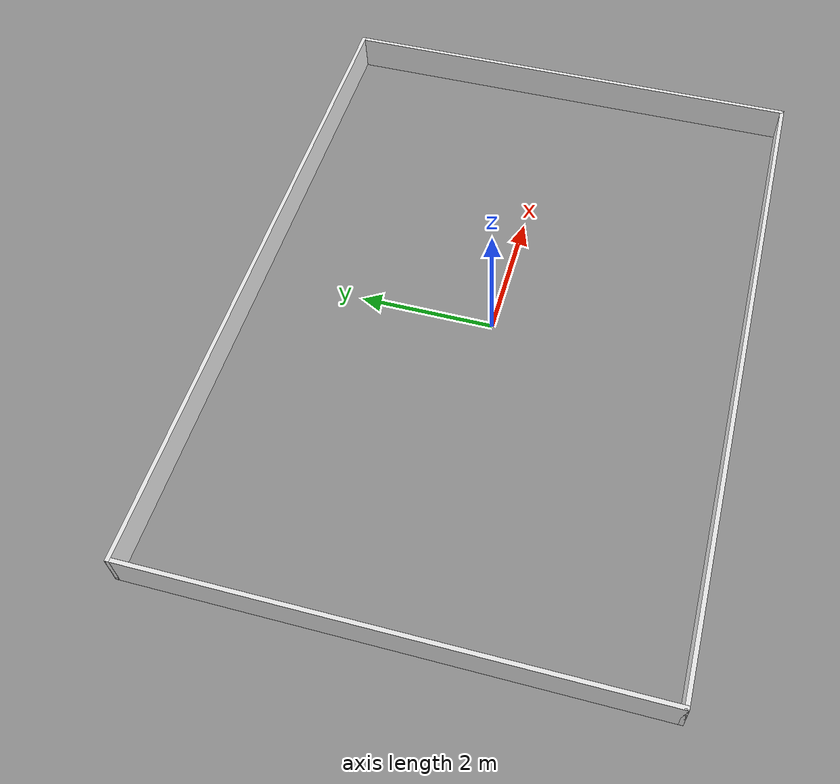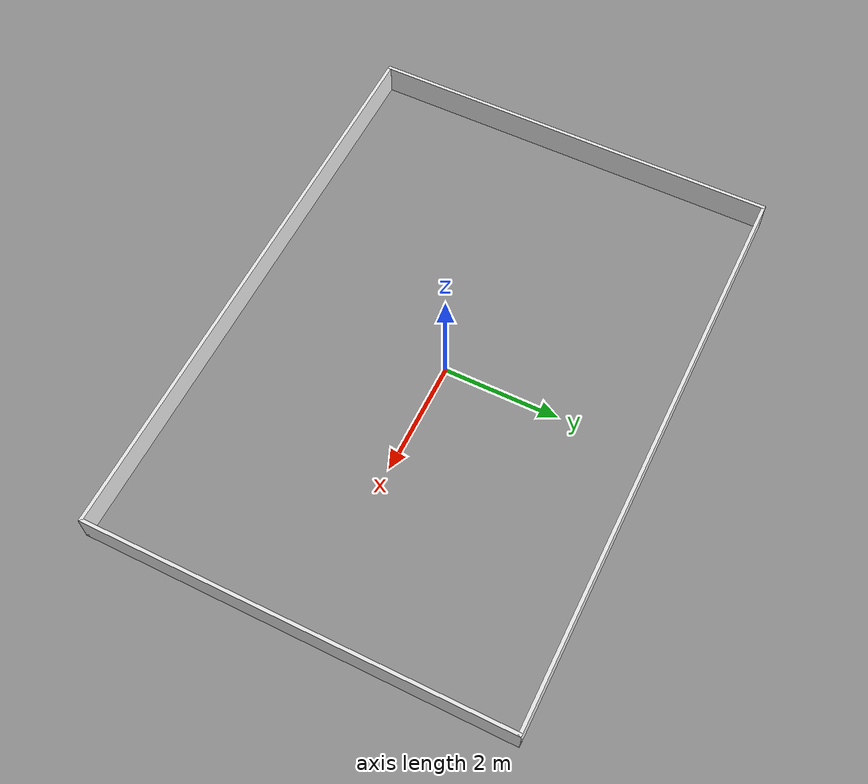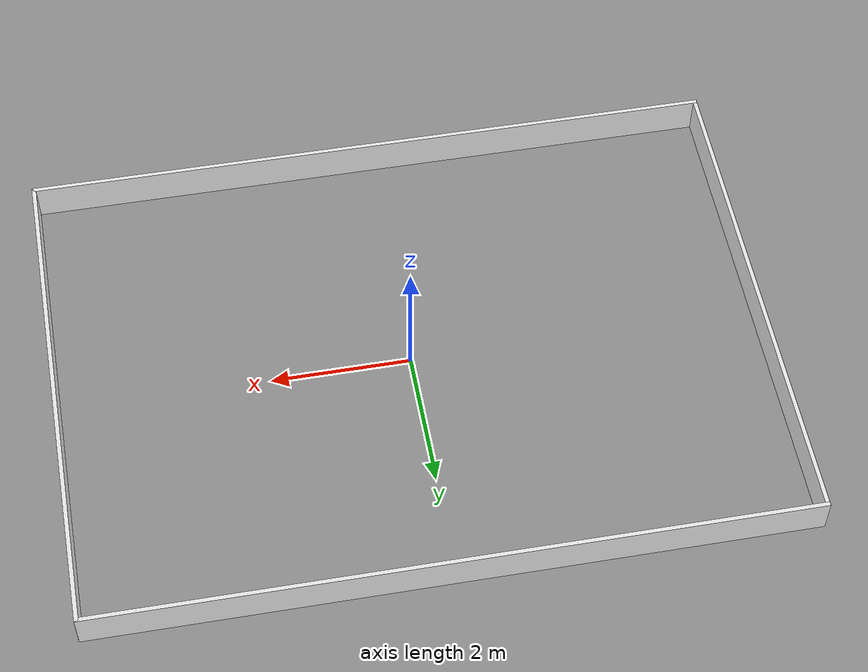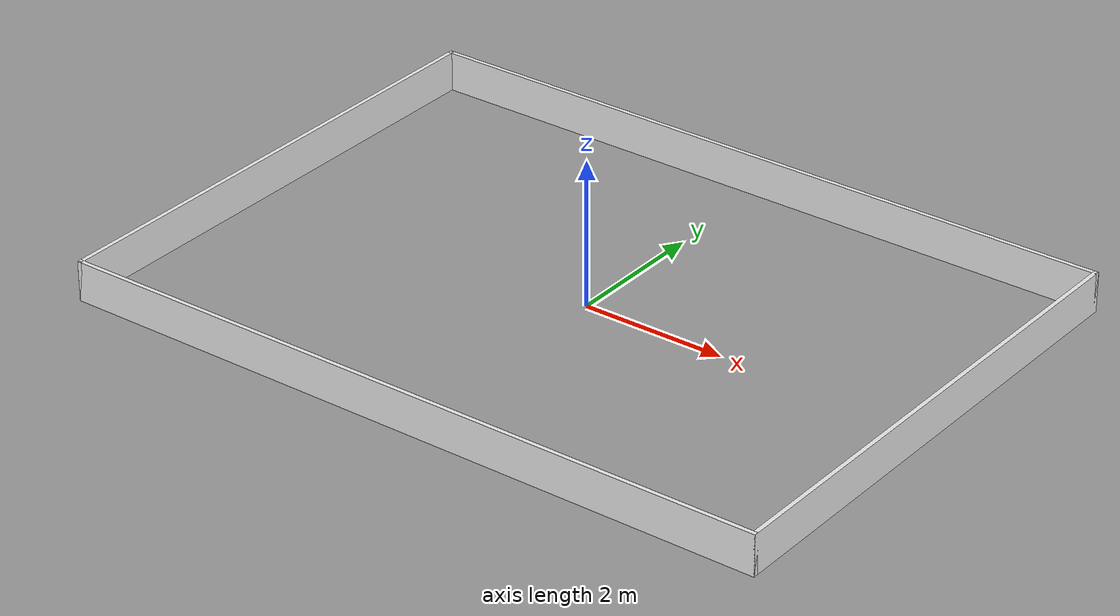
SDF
<sdf version="1.6">
 <world name="sq_community">
  <model name="sq_walls">
   <static>1</static>
   <link name="wall_n">
    <collision name="wall_n_c">
     <pose>0 3.6 0.275 0 0 0</pose>
     <geometry><box><size>10.06 0.06 0.55</size></box></geometry>
    </collision>
    <visual name="wall_n_v">
     <pose>0 3.6 0.275 0 0 0</pose>
     <geometry><box><size>10.06 0.06 0.55</size></box></geometry>
     <material>
      <script><uri>file://media/materials/scripts/gazebo.material</uri><name>Gazebo/White</name></script>
      <ambient>0.3025 0.3025 0.319 1</ambient>
      <diffuse>0.55 0.55 0.58 1</diffuse>
      <specular>0.1 0.1 0.1 1</specular>
      <emissive>0 0 0 1</emissive>
     </material>
    </visual>
   </link>
   <link name="wall_s">
    <collision name="wall_s_c">
     <pose>0 -3.6 0.275 0 0 0</pose>
     <geometry><box><size>10.06 0.06 0.55</size></box></geometry>
    </collision>
    <visual name="wall_s_v">
     <pose>0 -3.6 0.275 0 0 0</pose>
     <geometry><box><size>10.06 0.06 0.55</size></box></geometry>
     <material>
      <script><uri>file://media/materials/scripts/gazebo.material</uri><name>Gazebo/White</name></script>
      <ambient>0.3025 0.3025 0.319 1</ambient>
      <diffuse>0.55 0.55 0.58 1</diffuse>
      <specular>0.1 0.1 0.1 1</specular>
      <emissive>0 0 0 1</emissive>
     </material>
    </visual>
   </link>
   <link name="wall_w">
    <collision name="wall_w_c">
     <pose>-5 0 0.275 0 0 0</pose>
     <geometry><box><size>0.06 7.26 0.55</size></box></geometry>
    </collision>
    <visual name="wall_w_v">
     <pose>-5 0 0.275 0 0 0</pose>
     <geometry><box><size>0.06 7.26 0.55</size></box></geometry>
     <material>
      <script><uri>file://media/materials/scripts/gazebo.material</uri><name>Gazebo/White</name></script>
      <ambient>0.3025 0.3025 0.319 1</ambient>
      <diffuse>0.55 0.55 0.58 1</diffuse>
      <specular>0.1 0.1 0.1 1</specular>
      <emissive>0 0 0 1</emissive>
     </material>
    </visual>
   </link>
   <link name="wall_e">
    <collision name="wall_e_c">
     <pose>5 0 0.275 0 0 0</pose>
     <geometry><box><size>0.06 7.26 0.55</size></box></geometry>
    </collision>
    <visual name="wall_e_v">
     <pose>5 0 0.275 0 0 0</pose>
     <geometry><box><size>0.06 7.26 0.55</size></box></geometry>
     <material>
      <script><uri>file://media/materials/scripts/gazebo.material</uri><name>Gazebo/White</name></script>
      <ambient>0.3025 0.3025 0.319 1</ambient>
      <diffuse>0.55 0.55 0.58 1</diffuse>
      <specular>0.1 0.1 0.1 1</specular>
      <emissive>0 0 0 1</emissive>
     </material>
    </visual>
   </link>
  </model>
 </world>
</sdf>
